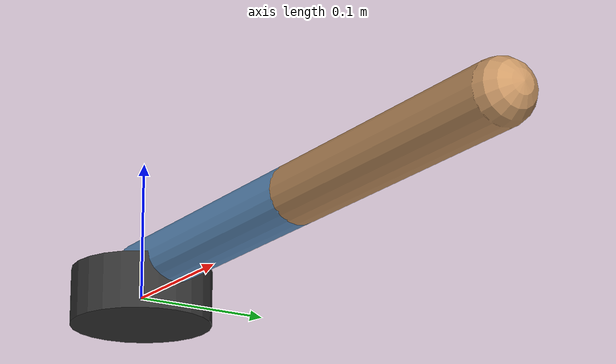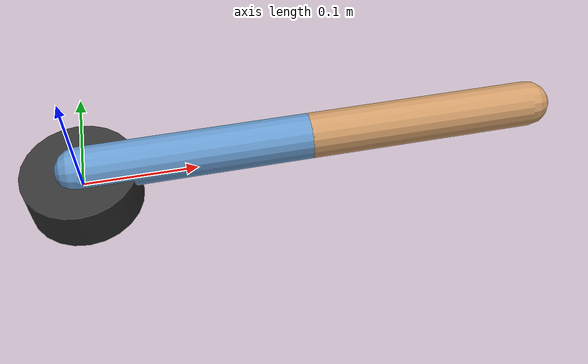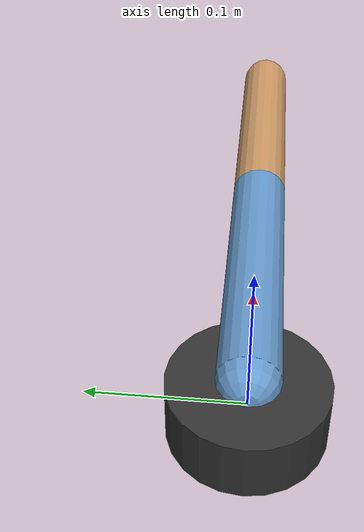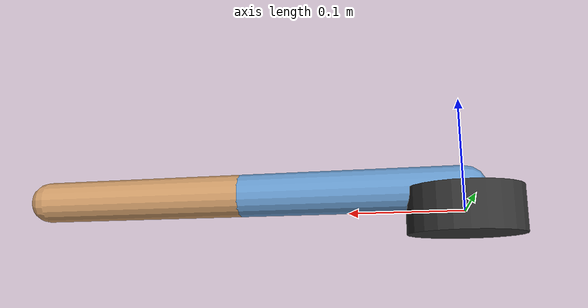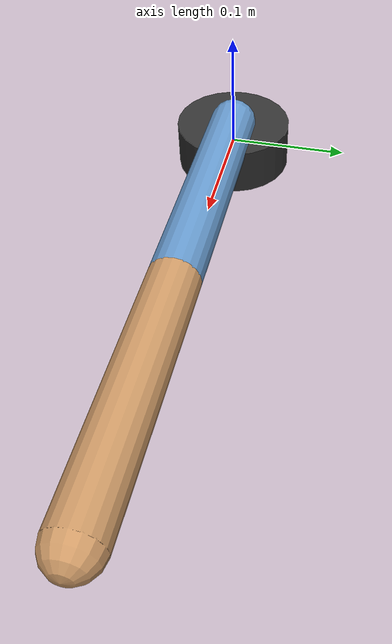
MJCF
<mujoco model="simple_arm">
    <compiler angle="degree"/>
    <option timestep="0.002"/>

    <worldbody>
        <!-- Base of the arm -->
        <body name="base" pos="0 0 0">
            <geom name="base_geom" type="cylinder" size="0.05 0.02" rgba="0.2 0.2 0.2 1"/>

            <!-- First link -->
            <body name="link1" pos="0 0 0.02">
                <joint name="joint1" type="hinge" axis="0 0 1" range="-90 90"/>
                <geom name="link1_geom" type="capsule" fromto="0 0 0 0.2 0 0" size="0.02" rgba="0.4 0.6 0.8 1"/>

                <!-- Second link -->
                <body name="link2" pos="0.2 0 0">
                    <joint name="joint2" type="hinge" axis="0 0 1" range="-90 90"/>
                    <geom name="link2_geom" type="capsule" fromto="0 0 0 0.2 0 0" size="0.02" rgba="0.8 0.6 0.4 1"/>

                    <!-- End effector body matches manipulator expectations -->
                    <body name="right_hand" pos="0.2 0 0">
                        <geom name="eef_geom" type="sphere" size="0.015" rgba="1 0.4 0.4 1"/>
                        <site name="ee_site" pos="0 0 0" size="0.01" rgba="1 0 0 1"/>
                    </body>
                </body>
            </body>
        </body>
    </worldbody>

    <actuator>
        <position name="act1" joint="joint1" kp="50"/>
        <position name="act2" joint="joint2" kp="50"/>
    </actuator>
</mujoco>
